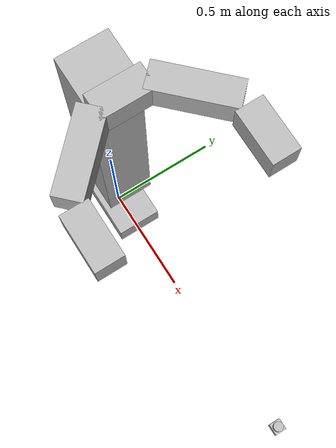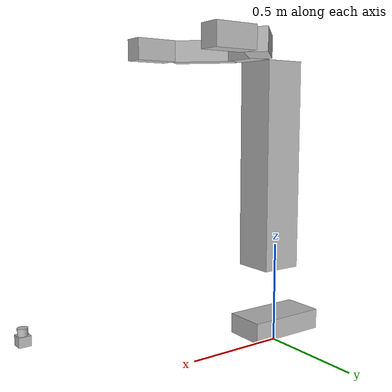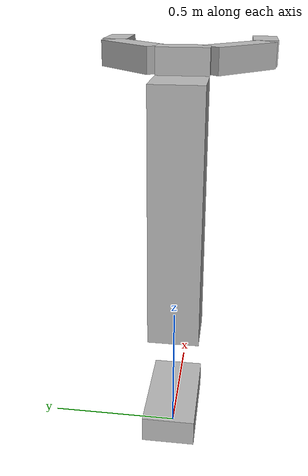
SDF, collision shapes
<?xml version="1.0" ?>
<sdf version="1.5">
  <model name="simple_mobile_manipulator">

    <include>
      <uri>model://my_gripper</uri>
      <pose> 0.2 0.0 0.4 0 0 0</pose>
    </include>

    <include>
      <uri>model://my_robot</uri>
      <pose>0 0 0 0 0 0</pose>
    </include>

    <joint name="arm_gripper_joint" type="fixed">
      <parent>mobile_base::chassis</parent>
      <child>simple_gripper::riser</child>
    </joint>

    <!-- attach sensor to the gripper -->
    <include>
      <uri>model://hokuyo</uri>
      <pose>1.3 0 0.3 0 0 0</pose>
    </include>

    <joint name="hokuyo_joint" type="fixed">
      <child>hokuyo::link</child>
      <parent>simple_gripper::palm</parent>
    </joint>

  </model>
</sdf>

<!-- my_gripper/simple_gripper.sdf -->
<sdf version="1.4">
    <model name="simple_gripper">
        <link name="riser">
            <pose>-0.15 0.0 0.5 0 0 0</pose>
            <inertial>
                <pose>0 0 -1.5 0 0 0</pose>
                <inertia>
                    <ixx>0.01</ixx>
                    <ixy>0</ixy>
                    <ixz>0</ixz>
                    <iyy>0.01</iyy>
                    <iyz>0</iyz>
                    <izz>0.01</izz>
                </inertia>
                <mass>10.0</mass>
            </inertial>
            <collision name="collision">
                <geometry>
                    <box>
                        <size>0.2 0.2 1.0</size>
                    </box>
                </geometry>
            </collision>
            <visual name="visual">
                <geometry>
                    <box>
                        <size>0.2 0.2 1.0</size>
                    </box>
                </geometry>
                <material>
                    <script>Gazebo/Purple</script>
                </material>
            </visual>
        </link>
        <link name="palm">
            <pose>0.0 0.0 1.05 0 0 0</pose>
            <inertial>
                <inertia>
                    <ixx>0.01</ixx>
                    <ixy>0</ixy>
                    <ixz>0</ixz>
                    <iyy>0.01</iyy>
                    <iyz>0</iyz>
                    <izz>0.01</izz>
                </inertia>
                <mass>0.5</mass>
            </inertial>
            <collision name="collision">
                <geometry>
                    <box>
                        <size>0.1 0.2 0.1</size>
                    </box>
                </geometry>
            </collision>
            <visual name="visual">
                <geometry>
                    <box>
                        <size>0.1 0.2 0.1</size>
                    </box>
                </geometry>
                <material>
                    <script>Gazebo/Red</script>
                </material>
            </visual>
        </link>
        <link name="left_finger">
            <pose>0.1 0.2 1.05 0 0 -0.78539</pose>
            <inertial>
                <inertia>
                    <ixx>0.01</ixx>
                    <ixy>0</ixy>
                    <ixz>0</ixz>
                    <iyy>0.01</iyy>
                    <iyz>0</iyz>
                    <izz>0.01</izz>
                </inertia>
                <mass>0.1</mass>
            </inertial>
            <collision name="collision">
                <geometry>
                    <box>
                        <size>0.1 0.3 0.1</size>
                    </box>
                </geometry>
            </collision>
            <visual name="visual">
                <geometry>
                    <box>
                        <size>0.1 0.3 0.1</size>
                    </box>
                </geometry>
                <material>
                    <script>Gazebo/Blue</script>
                </material>
            </visual>
        </link>
        <link name="left_finger_tip">
            <pose>0.336 0.3 1.05 0 0 1.5707</pose>
            <inertial>
                <inertia>
                    <ixx>0.01</ixx>
                    <ixy>0</ixy>
                    <ixz>0</ixz>
                    <iyy>0.01</iyy>
                    <iyz>0</iyz>
                    <izz>0.01</izz>
                </inertia>
                <mass>0.1</mass>
            </inertial>
            <collision name="collision">
                <geometry>
                    <box>
                        <size>0.1 0.2 0.1</size>
                    </box>
                </geometry>
            </collision>
            <visual name="visual">
                <geometry>
                    <box>
                        <size>0.1 0.2 0.1</size>
                    </box>
                </geometry>
                <material>
                    <script>Gazebo/Blue</script>
                </material>
            </visual>
        </link>
        <link name="right_finger">
            <pose>0.1 -0.2 1.05 0 0 .78539</pose>
            <inertial>
                <inertia>
                    <ixx>0.01</ixx>
                    <ixy>0</ixy>
                    <ixz>0</ixz>
                    <iyy>0.01</iyy>
                    <iyz>0</iyz>
                    <izz>0.01</izz>
                </inertia>
                <mass>0.1</mass>
            </inertial>
            <collision name="collision">
                <geometry>
                    <box>
                        <size>0.1 0.3 0.1</size>
                    </box>
                </geometry>
            </collision>
            <visual name="visual">
                <geometry>
                    <box>
                        <size>0.1 0.3 0.1</size>
                    </box>
                </geometry>
                <material>
                    <script>Gazebo/Green</script>
                </material>
            </visual>
        </link>
        <link name="right_finger_tip">
            <pose>0.336 -0.3 1.05 0 0 1.5707</pose>
            <inertial>
                <inertia>
                    <ixx>0.01</ixx>
                    <ixy>0</ixy>
                    <ixz>0</ixz>
                    <iyy>0.01</iyy>
                    <iyz>0</iyz>
                    <izz>0.01</izz>
                </inertia>
                <mass>0.1</mass>
            </inertial>
            <collision name="collision">
                <geometry>
                    <box>
                        <size>0.1 0.2 0.1</size>
                    </box>
                </geometry>
            </collision>
            <visual name="visual">
                <geometry>
                    <box>
                        <size>0.1 0.2 0.1</size>
                    </box>
                </geometry>
                <material>
                    <script>Gazebo/Green</script>
                </material>
            </visual>
        </link>
        <static>false</static>
            <joint name="palm_left_finger" type="revolute">
            <pose>0 -0.15 0 0 0 0</pose>
            <child>left_finger</child>
            <parent>palm</parent>
            <axis>
                <limit>
                    <lower>-0.4</lower>
                    <upper>0.4</upper>
                </limit>
                <xyz>0 0 1</xyz>
            </axis>
        </joint>
        <joint name="left_finger_tip" type="revolute">
            <pose>0 0.1 0 0 0 0</pose>
            <child>left_finger_tip</child>
            <parent>left_finger</parent>
            <axis>
                <limit>
                    <lower>-0.4</lower>
                    <upper>0.4</upper>
                </limit>
                <xyz>0 0 1</xyz>
            </axis>
        </joint>
        <joint name="palm_right_finger" type="revolute">
            <pose>0 0.15 0 0 0 0</pose>
            <child>right_finger</child>
            <parent>palm</parent>
            <axis>
                <limit>
                    <lower>-0.4</lower>
                    <upper>0.4</upper>
                </limit>
                <xyz>0 0 1</xyz>
            </axis>
        </joint>
        <joint name="right_finger_tip" type="revolute">
            <pose>0 0.1 0 0 0 0</pose>
            <child>right_finger_tip</child>
            <parent>right_finger</parent>
            <axis>
                <limit>
                    <lower>-0.4</lower>
                    <upper>0.4</upper>
                </limit>
                <xyz>0 0 1</xyz>
            </axis>
        </joint>
        <joint name="palm_riser" type="prismatic">
            <child>palm</child>
            <parent>riser</parent>
            <axis>
                <limit>
                    <lower>0</lower>
                    <upper>0.9</upper>
                </limit>
                <xyz>0 0 1</xyz>
            </axis>
        </joint>
    </model>
</sdf>

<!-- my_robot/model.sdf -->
<sdf version='1.4'>
      <model name="my_robot">
      <static>true</static>
      <link name='chassis'>
            <pose>0 0 .1 0 0 0</pose>

            <collision name='collision'>
              <geometry>
                <box>
                  <size>.4 .2 .1</size>
                </box>
              </geometry>
            </collision>

            <visual name='visual'>
              <geometry>
                <box>
                  <size>.4 .2 .1</size>
                </box>
              </geometry>
            </visual>
          </link>
          </model>
    </sdf>

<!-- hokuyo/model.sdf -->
<sdf version="1.5">
  <model name="hokuyo">
    <pose>0 0 0.035 0 0 0</pose>
    <link name="link">
      <inertial>
        <mass>0.1</mass>
      </inertial>
      <visual name="visual">
        <geometry>
          <mesh>
            <uri>model://../model_source/models/hokuyo/meshes/hokuyo.dae</uri>
          </mesh>
        </geometry>
      </visual>
      <collision name="collision-base">
        <pose>0 0 -0.0145 0 0 0</pose>
        <geometry>
          <box>
            <size>0.05 0.05 0.041</size>
          </box>
        </geometry>
      </collision>
      <collision name="collision-top">
        <pose>0 0 0.0205 0 0 0</pose>
        <geometry>
          <cylinder>
            <radius>0.021</radius>
            <length>0.029</length>
          </cylinder>
        </geometry>
      </collision>
      <sensor name="laser" type="ray">
        <pose>0.01 0 0.0175 0 -0 0</pose>
        <ray>
          <scan>
            <horizontal>
              <samples>640</samples>
              <resolution>1</resolution>
              <min_angle>-2.26889</min_angle>
              <max_angle>2.268899</max_angle>
            </horizontal>
          </scan>
          <range>
            <min>0.08</min>
            <max>10</max>
            <resolution>0.01</resolution>
          </range>
        </ray>
        <plugin name="laser" filename="libRayPlugin.so" />
        <always_on>1</always_on>
        <update_rate>30</update_rate>
        <visualize>true</visualize>
      </sensor>
    </link>
  </model>
</sdf>
